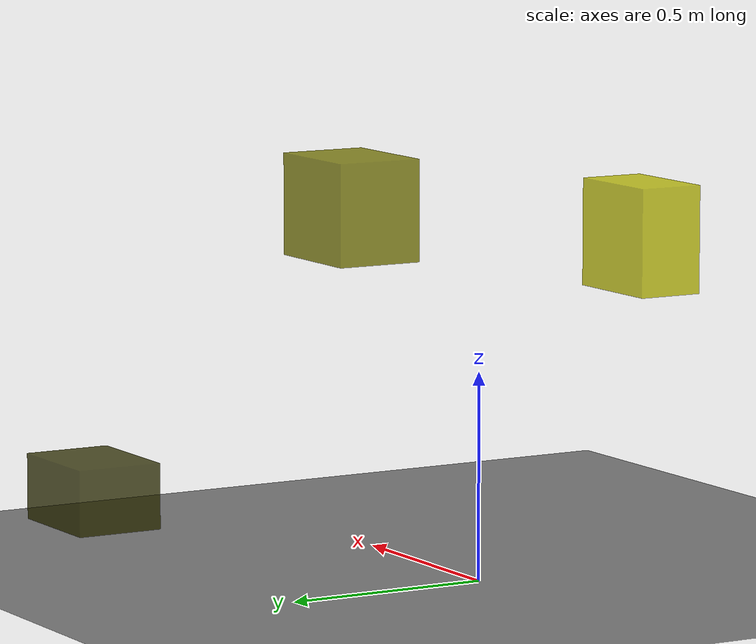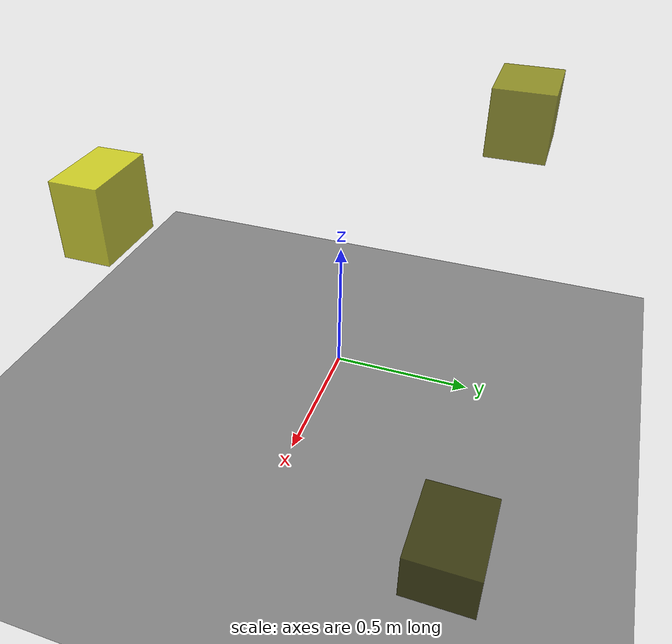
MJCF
<?xml version="1.0"?>
<mujoco model="obstacle_scene">
  <compiler angle="radian" coordinate="local"/>
  <option timestep="0.001" gravity="0 0 -9.81"/>

  <asset>
    <material name="obstacle_mat" rgba="0.8 0.8 0.0 0.8"/>
    <material name="ground_mat" rgba="0.5 0.5 0.5 1"/>
  </asset>

  <worldbody>
    <!-- Ground plane -->
    <geom name="ground" type="plane" size="3 3 0.1" material="ground_mat"/>

    <!-- Obstacles -->
    <body name="obstacle_0" pos="0.825308 0.601259 0.139058">
      <geom name="obs_0" type="box" size="0.143070 0.109342 0.081606" rgba="0.2 0.2 0.0 0.8"/>
    </body>
    <body name="obstacle_1" pos="-0.311528 0.525416 0.959397">
      <geom name="obs_1" type="box" size="0.129010 0.100487 0.115165" rgba="0.5 0.5 0.0 0.8"/>
    </body>
    <body name="obstacle_2" pos="0.368612 -0.691603 0.736393">
      <geom name="obs_2" type="box" size="0.136433 0.083467 0.134738" rgba="0.8 0.8 0.0 0.8"/>
    </body>
  </worldbody>
</mujoco>
